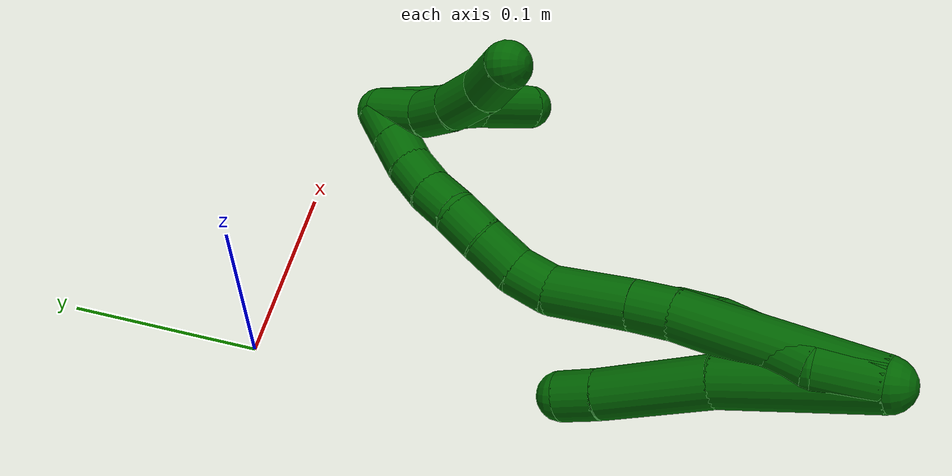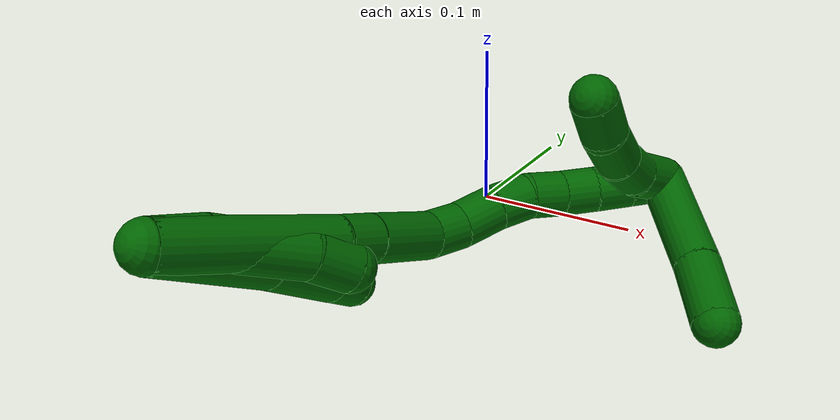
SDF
<sdf version="1.7">
 <world name="default">
  <model name="6">
   <static>0</static>
   <link name="6">
    <collision name="collision-cylinder-e_1_2_8">
     <pose>-0.001637 -0.002036 -0.03609 3.08524 -0.045249 -1.35298</pose>
     <geometry><cylinder><radius>0.0125</radius><length>0.072369</length></cylinder></geometry>
     <surface>
      <friction><ode><mu>1.16</mu><mu2>1.16</mu2><slip1>0</slip1><slip2>0</slip2></ode></friction>
      <contact><ode><kp>1e+06</kp><kd>1</kd><max_vel>0</max_vel><min_depth>0.001</min_depth></ode></contact>
     </surface>
    </collision>
    <visual name="visual-cylinder-e_1_2_8">
     <pose>-0.001637 -0.002036 -0.03609 3.08524 -0.045249 -1.35298</pose>
     <geometry><cylinder><radius>0.0125</radius><length>0.072369</length></cylinder></geometry>
     <material><ambient>0 0.392157 0.003922 1</ambient></material>
    </visual>
    <collision name="collision-cylinder-e_2_8_9">
     <pose>-0.006588 -0.008473 -0.100095 2.98524 -0.11675 -1.28189</pose>
     <geometry><cylinder><radius>0.0125</radius><length>0.056907</length></cylinder></geometry>
     <surface>
      <friction><ode><mu>1.16</mu><mu2>1.16</mu2><slip1>0</slip1><slip2>0</slip2></ode></friction>
      <contact><ode><kp>1e+06</kp><kd>1</kd><max_vel>0</max_vel><min_depth>0.001</min_depth></ode></contact>
     </surface>
    </collision>
    <visual name="visual-cylinder-e_2_8_9">
     <pose>-0.006588 -0.008473 -0.100095 2.98524 -0.11675 -1.28189</pose>
     <geometry><cylinder><radius>0.0125</radius><length>0.056907</length></cylinder></geometry>
     <material><ambient>0 0.392157 0.003922 1</ambient></material>
    </visual>
    <collision name="collision-cylinder-e_3_9_6">
     <pose>-0.010566 -0.014135 -0.138274 3.01928 -0.06413 -0.965101</pose>
     <geometry><cylinder><radius>0.0125</radius><length>0.020724</length></cylinder></geometry>
     <surface>
      <friction><ode><mu>1.16</mu><mu2>1.16</mu2><slip1>0</slip1><slip2>0</slip2></ode></friction>
      <contact><ode><kp>1e+06</kp><kd>1</kd><max_vel>0</max_vel><min_depth>0.001</min_depth></ode></contact>
     </surface>
    </collision>
    <visual name="visual-cylinder-e_3_9_6">
     <pose>-0.010566 -0.014135 -0.138274 3.01928 -0.06413 -0.965101</pose>
     <geometry><cylinder><radius>0.0125</radius><length>0.020724</length></cylinder></geometry>
     <material><ambient>0 0.392157 0.003922 1</ambient></material>
    </visual>
    <collision name="collision-cylinder-e_1_2_10">
     <pose>-0.000301 0.002629 -0.013727 -2.95235 -0.021499 0.225577</pose>
     <geometry><cylinder><radius>0.0125</radius><length>0.027959</length></cylinder></geometry>
     <surface>
      <friction><ode><mu>1.16</mu><mu2>1.16</mu2><slip1>0</slip1><slip2>0</slip2></ode></friction>
      <contact><ode><kp>1e+06</kp><kd>1</kd><max_vel>0</max_vel><min_depth>0.001</min_depth></ode></contact>
     </surface>
    </collision>
    <visual name="visual-cylinder-e_1_2_10">
     <pose>-0.000301 0.002629 -0.013727 -2.95235 -0.021499 0.225577</pose>
     <geometry><cylinder><radius>0.0125</radius><length>0.027959</length></cylinder></geometry>
     <material><ambient>0 0.392157 0.003922 1</ambient></material>
    </visual>
    <collision name="collision-cylinder-e_2_10_11">
     <pose>0.007188 0.009824 -0.050279 -2.94419 0.322911 -2.04907</pose>
     <geometry><cylinder><radius>0.0125</radius><length>0.049093</length></cylinder></geometry>
     <surface>
      <friction><ode><mu>1.16</mu><mu2>1.16</mu2><slip1>0</slip1><slip2>0</slip2></ode></friction>
      <contact><ode><kp>1e+06</kp><kd>1</kd><max_vel>0</max_vel><min_depth>0.001</min_depth></ode></contact>
     </surface>
    </collision>
    <visual name="visual-cylinder-e_2_10_11">
     <pose>0.007188 0.009824 -0.050279 -2.94419 0.322911 -2.04907</pose>
     <geometry><cylinder><radius>0.0125</radius><length>0.049093</length></cylinder></geometry>
     <material><ambient>0 0.392157 0.003922 1</ambient></material>
    </visual>
    <collision name="collision-cylinder-e_3_11_5">
     <pose>0.018522 0.014329 -0.084018 3.13609 0.314047 3.10681</pose>
     <geometry><cylinder><radius>0.0125</radius><length>0.022948</length></cylinder></geometry>
     <surface>
      <friction><ode><mu>1.16</mu><mu2>1.16</mu2><slip1>0</slip1><slip2>0</slip2></ode></friction>
      <contact><ode><kp>1e+06</kp><kd>1</kd><max_vel>0</max_vel><min_depth>0.001</min_depth></ode></contact>
     </surface>
    </collision>
    <visual name="visual-cylinder-e_3_11_5">
     <pose>0.018522 0.014329 -0.084018 3.13609 0.314047 3.10681</pose>
     <geometry><cylinder><radius>0.0125</radius><length>0.022948</length></cylinder></geometry>
     <material><ambient>0 0.392157 0.003922 1</ambient></material>
    </visual>
    <collision name="collision-cylinder-e_1_2_12">
     <pose>0.005517 0.010421 -0.045255 -2.91527 0.118249 -0.96038</pose>
     <geometry><cylinder><radius>0.0125</radius><length>0.093532</length></cylinder></geometry>
     <surface>
      <friction><ode><mu>1.16</mu><mu2>1.16</mu2><slip1>0</slip1><slip2>0</slip2></ode></friction>
      <contact><ode><kp>1e+06</kp><kd>1</kd><max_vel>0</max_vel><min_depth>0.001</min_depth></ode></contact>
     </surface>
    </collision>
    <visual name="visual-cylinder-e_1_2_12">
     <pose>0.005517 0.010421 -0.045255 -2.91527 0.118249 -0.96038</pose>
     <geometry><cylinder><radius>0.0125</radius><length>0.093532</length></cylinder></geometry>
     <material><ambient>0 0.392157 0.003922 1</ambient></material>
    </visual>
    <collision name="collision-cylinder-e_2_12_13">
     <pose>0.011131 0.022785 -0.100752 -2.95411 0.009233 -0.098127</pose>
     <geometry><cylinder><radius>0.0125</radius><length>0.020849</length></cylinder></geometry>
     <surface>
      <friction><ode><mu>1.16</mu><mu2>1.16</mu2><slip1>0</slip1><slip2>0</slip2></ode></friction>
      <contact><ode><kp>1e+06</kp><kd>1</kd><max_vel>0</max_vel><min_depth>0.001</min_depth></ode></contact>
     </surface>
    </collision>
    <visual name="visual-cylinder-e_2_12_13">
     <pose>0.011131 0.022785 -0.100752 -2.95411 0.009233 -0.098127</pose>
     <geometry><cylinder><radius>0.0125</radius><length>0.020849</length></cylinder></geometry>
     <material><ambient>0 0.392157 0.003922 1</ambient></material>
    </visual>
    <collision name="collision-cylinder-e_3_13_14">
     <pose>0.011005 0.028 -0.13185 -2.98595 -0.010496 0.134403</pose>
     <geometry><cylinder><radius>0.0125</radius><length>0.042225</length></cylinder></geometry>
     <surface>
      <friction><ode><mu>1.16</mu><mu2>1.16</mu2><slip1>0</slip1><slip2>0</slip2></ode></friction>
      <contact><ode><kp>1e+06</kp><kd>1</kd><max_vel>0</max_vel><min_depth>0.001</min_depth></ode></contact>
     </surface>
    </collision>
    <visual name="visual-cylinder-e_3_13_14">
     <pose>0.011005 0.028 -0.13185 -2.98595 -0.010496 0.134403</pose>
     <geometry><cylinder><radius>0.0125</radius><length>0.042225</length></cylinder></geometry>
     <material><ambient>0 0.392157 0.003922 1</ambient></material>
    </visual>
    <collision name="collision-cylinder-e_4_14_15">
     <pose>0.011577 0.036077 -0.16165 -2.6487 0.07804 -0.307922</pose>
     <geometry><cylinder><radius>0.0125</radius><length>0.020367</length></cylinder></geometry>
     <surface>
      <friction><ode><mu>1.16</mu><mu2>1.16</mu2><slip1>0</slip1><slip2>0</slip2></ode></friction>
      <contact><ode><kp>1e+06</kp><kd>1</kd><max_vel>0</max_vel><min_depth>0.001</min_depth></ode></contact>
     </surface>
    </collision>
    <visual name="visual-cylinder-e_4_14_15">
     <pose>0.011577 0.036077 -0.16165 -2.6487 0.07804 -0.307922</pose>
     <geometry><cylinder><radius>0.0125</radius><length>0.020367</length></cylinder></geometry>
     <material><ambient>0 0.392157 0.003922 1</ambient></material>
    </visual>
    <collision name="collision-cylinder-e_5_15_16">
     <pose>0.01382 0.04873 -0.17872 -2.37349 0.127534 -0.313422</pose>
     <geometry><cylinder><radius>0.0125</radius><length>0.02278</length></cylinder></geometry>
     <surface>
      <friction><ode><mu>1.16</mu><mu2>1.16</mu2><slip1>0</slip1><slip2>0</slip2></ode></friction>
      <contact><ode><kp>1e+06</kp><kd>1</kd><max_vel>0</max_vel><min_depth>0.001</min_depth></ode></contact>
     </surface>
    </collision>
    <visual name="visual-cylinder-e_5_15_16">
     <pose>0.01382 0.04873 -0.17872 -2.37349 0.127534 -0.313422</pose>
     <geometry><cylinder><radius>0.0125</radius><length>0.02278</length></cylinder></geometry>
     <material><ambient>0 0.392157 0.003922 1</ambient></material>
    </visual>
    <collision name="collision-cylinder-e_6_16_17">
     <pose>0.017495 0.063032 -0.19431 -2.42872 0.221921 -0.581511</pose>
     <geometry><cylinder><radius>0.0125</radius><length>0.020231</length></cylinder></geometry>
     <surface>
      <friction><ode><mu>1.16</mu><mu2>1.16</mu2><slip1>0</slip1><slip2>0</slip2></ode></friction>
      <contact><ode><kp>1e+06</kp><kd>1</kd><max_vel>0</max_vel><min_depth>0.001</min_depth></ode></contact>
     </surface>
    </collision>
    <visual name="visual-cylinder-e_6_16_17">
     <pose>0.017495 0.063032 -0.19431 -2.42872 0.221921 -0.581511</pose>
     <geometry><cylinder><radius>0.0125</radius><length>0.020231</length></cylinder></geometry>
     <material><ambient>0 0.392157 0.003922 1</ambient></material>
    </visual>
    <collision name="collision-cylinder-e_7_17_18">
     <pose>0.023206 0.073853 -0.210072 -2.65709 0.355737 -1.25789</pose>
     <geometry><cylinder><radius>0.0125</radius><length>0.020006</length></cylinder></geometry>
     <surface>
      <friction><ode><mu>1.16</mu><mu2>1.16</mu2><slip1>0</slip1><slip2>0</slip2></ode></friction>
      <contact><ode><kp>1e+06</kp><kd>1</kd><max_vel>0</max_vel><min_depth>0.001</min_depth></ode></contact>
     </surface>
    </collision>
    <visual name="visual-cylinder-e_7_17_18">
     <pose>0.023206 0.073853 -0.210072 -2.65709 0.355737 -1.25789</pose>
     <geometry><cylinder><radius>0.0125</radius><length>0.020006</length></cylinder></geometry>
     <material><ambient>0 0.392157 0.003922 1</ambient></material>
    </visual>
    <collision name="collision-cylinder-e_8_18_19">
     <pose>0.030851 0.083599 -0.225707 -2.50904 0.429011 -1.17467</pose>
     <geometry><cylinder><radius>0.0125</radius><length>0.020008</length></cylinder></geometry>
     <surface>
      <friction><ode><mu>1.16</mu><mu2>1.16</mu2><slip1>0</slip1><slip2>0</slip2></ode></friction>
      <contact><ode><kp>1e+06</kp><kd>1</kd><max_vel>0</max_vel><min_depth>0.001</min_depth></ode></contact>
     </surface>
    </collision>
    <visual name="visual-cylinder-e_8_18_19">
     <pose>0.030851 0.083599 -0.225707 -2.50904 0.429011 -1.17467</pose>
     <geometry><cylinder><radius>0.0125</radius><length>0.020008</length></cylinder></geometry>
     <material><ambient>0 0.392157 0.003922 1</ambient></material>
    </visual>
    <collision name="collision-cylinder-e_9_19_20">
     <pose>0.040035 0.094974 -0.239274 -2.37526 0.526208 -1.17815</pose>
     <geometry><cylinder><radius>0.0125</radius><length>0.020001</length></cylinder></geometry>
     <surface>
      <friction><ode><mu>1.16</mu><mu2>1.16</mu2><slip1>0</slip1><slip2>0</slip2></ode></friction>
      <contact><ode><kp>1e+06</kp><kd>1</kd><max_vel>0</max_vel><min_depth>0.001</min_depth></ode></contact>
     </surface>
    </collision>
    <visual name="visual-cylinder-e_9_19_20">
     <pose>0.040035 0.094974 -0.239274 -2.37526 0.526208 -1.17815</pose>
     <geometry><cylinder><radius>0.0125</radius><length>0.020001</length></cylinder></geometry>
     <material><ambient>0 0.392157 0.003922 1</ambient></material>
    </visual>
    <collision name="collision-cylinder-e_10_20_1">
     <pose>0.050095 0.106993 -0.251699 -2.3704 0.527874 -1.17474</pose>
     <geometry><cylinder><radius>0.0125</radius><length>0.02</length></cylinder></geometry>
     <surface>
      <friction><ode><mu>1.16</mu><mu2>1.16</mu2><slip1>0</slip1><slip2>0</slip2></ode></friction>
      <contact><ode><kp>1e+06</kp><kd>1</kd><max_vel>0</max_vel><min_depth>0.001</min_depth></ode></contact>
     </surface>
    </collision>
    <visual name="visual-cylinder-e_10_20_1">
     <pose>0.050095 0.106993 -0.251699 -2.3704 0.527874 -1.17474</pose>
     <geometry><cylinder><radius>0.0125</radius><length>0.02</length></cylinder></geometry>
     <material><ambient>0 0.392157 0.003922 1</ambient></material>
    </visual>
    <collision name="collision-cylinder-e_1_1_21">
     <pose>0.082035 0.101797 -0.245313 0.728145 1.0111 0.415765</pose>
     <geometry><cylinder><radius>0.0125</radius><length>0.063495</length></cylinder></geometry>
     <surface>
      <friction><ode><mu>1.16</mu><mu2>1.16</mu2><slip1>0</slip1><slip2>0</slip2></ode></friction>
      <contact><ode><kp>1e+06</kp><kd>1</kd><max_vel>0</max_vel><min_depth>0.001</min_depth></ode></contact>
     </surface>
    </collision>
    <visual name="visual-cylinder-e_1_1_21">
     <pose>0.082035 0.101797 -0.245313 0.728145 1.0111 0.415765</pose>
     <geometry><cylinder><radius>0.0125</radius><length>0.063495</length></cylinder></geometry>
     <material><ambient>0 0.392157 0.003922 1</ambient></material>
    </visual>
    <collision name="collision-cylinder-e_2_21_4">
     <pose>0.123824 0.083109 -0.225264 0.78561 0.953643 0.421713</pose>
     <geometry><cylinder><radius>0.0125</radius><length>0.036505</length></cylinder></geometry>
     <surface>
      <friction><ode><mu>1.16</mu><mu2>1.16</mu2><slip1>0</slip1><slip2>0</slip2></ode></friction>
      <contact><ode><kp>1e+06</kp><kd>1</kd><max_vel>0</max_vel><min_depth>0.001</min_depth></ode></contact>
     </surface>
    </collision>
    <visual name="visual-cylinder-e_2_21_4">
     <pose>0.123824 0.083109 -0.225264 0.78561 0.953643 0.421713</pose>
     <geometry><cylinder><radius>0.0125</radius><length>0.036505</length></cylinder></geometry>
     <material><ambient>0 0.392157 0.003922 1</ambient></material>
    </visual>
    <collision name="collision-cylinder-e_1_1_22">
     <pose>0.054094 0.111701 -0.243182 0.089002 -0.070124 -0.003124</pose>
     <geometry><cylinder><radius>0.0125</radius><length>0.029614</length></cylinder></geometry>
     <surface>
      <friction><ode><mu>1.16</mu><mu2>1.16</mu2><slip1>0</slip1><slip2>0</slip2></ode></friction>
      <contact><ode><kp>1e+06</kp><kd>1</kd><max_vel>0</max_vel><min_depth>0.001</min_depth></ode></contact>
     </surface>
    </collision>
    <visual name="visual-cylinder-e_1_1_22">
     <pose>0.054094 0.111701 -0.243182 0.089002 -0.070124 -0.003124</pose>
     <geometry><cylinder><radius>0.0125</radius><length>0.029614</length></cylinder></geometry>
     <material><ambient>0 0.392157 0.003922 1</ambient></material>
    </visual>
    <collision name="collision-cylinder-e_2_22_23">
     <pose>0.05178 0.112214 -0.217942 -0.171759 -0.118946 0.010252</pose>
     <geometry><cylinder><radius>0.0125</radius><length>0.02152</length></cylinder></geometry>
     <surface>
      <friction><ode><mu>1.16</mu><mu2>1.16</mu2><slip1>0</slip1><slip2>0</slip2></ode></friction>
      <contact><ode><kp>1e+06</kp><kd>1</kd><max_vel>0</max_vel><min_depth>0.001</min_depth></ode></contact>
     </surface>
    </collision>
    <visual name="visual-cylinder-e_2_22_23">
     <pose>0.05178 0.112214 -0.217942 -0.171759 -0.118946 0.010252</pose>
     <geometry><cylinder><radius>0.0125</radius><length>0.02152</length></cylinder></geometry>
     <material><ambient>0 0.392157 0.003922 1</ambient></material>
    </visual>
    <collision name="collision-cylinder-e_3_23_24">
     <pose>0.049369 0.118618 -0.19565 -0.371055 -0.089575 0.016823</pose>
     <geometry><cylinder><radius>0.0125</radius><length>0.025352</length></cylinder></geometry>
     <surface>
      <friction><ode><mu>1.16</mu><mu2>1.16</mu2><slip1>0</slip1><slip2>0</slip2></ode></friction>
      <contact><ode><kp>1e+06</kp><kd>1</kd><max_vel>0</max_vel><min_depth>0.001</min_depth></ode></contact>
     </surface>
    </collision>
    <visual name="visual-cylinder-e_3_23_24">
     <pose>0.049369 0.118618 -0.19565 -0.371055 -0.089575 0.016823</pose>
     <geometry><cylinder><radius>0.0125</radius><length>0.025352</length></cylinder></geometry>
     <material><ambient>0 0.392157 0.003922 1</ambient></material>
    </visual>
    <collision name="collision-cylinder-e_4_24_3">
     <pose>0.04578 0.129543 -0.174297 -0.584816 -0.210387 0.063548</pose>
     <geometry><cylinder><radius>0.0125</radius><length>0.023513</length></cylinder></geometry>
     <surface>
      <friction><ode><mu>1.16</mu><mu2>1.16</mu2><slip1>0</slip1><slip2>0</slip2></ode></friction>
      <contact><ode><kp>1e+06</kp><kd>1</kd><max_vel>0</max_vel><min_depth>0.001</min_depth></ode></contact>
     </surface>
    </collision>
    <visual name="visual-cylinder-e_4_24_3">
     <pose>0.04578 0.129543 -0.174297 -0.584816 -0.210387 0.063548</pose>
     <geometry><cylinder><radius>0.0125</radius><length>0.023513</length></cylinder></geometry>
     <material><ambient>0 0.392157 0.003922 1</ambient></material>
    </visual>
    <collision name="collision-sphere-3">
     <pose>0.043325 0.13589 -0.16471 0 -0 0</pose>
     <geometry><sphere><radius>0.0125</radius></sphere></geometry>
     <surface>
      <friction><ode><mu>1.16</mu><mu2>1.16</mu2><slip1>0</slip1><slip2>0</slip2></ode></friction>
      <contact><ode><kp>1e+06</kp><kd>1</kd><max_vel>0</max_vel><min_depth>0.001</min_depth></ode></contact>
     </surface>
    </collision>
    <visual name="visual-sphere-3">
     <pose>0.043325 0.13589 -0.16471 0 -0 0</pose>
     <geometry><sphere><radius>0.0125</radius></sphere></geometry>
     <material><ambient>0 0.392157 0.003922 1</ambient></material>
    </visual>
    <collision name="collision-sphere-24">
     <pose>0.048235 0.123196 -0.183884 0 -0 0</pose>
     <geometry><sphere><radius>0.0125</radius></sphere></geometry>
     <surface>
      <friction><ode><mu>1.16</mu><mu2>1.16</mu2><slip1>0</slip1><slip2>0</slip2></ode></friction>
      <contact><ode><kp>1e+06</kp><kd>1</kd><max_vel>0</max_vel><min_depth>0.001</min_depth></ode></contact>
     </surface>
    </collision>
    <visual name="visual-sphere-24">
     <pose>0.048235 0.123196 -0.183884 0 -0 0</pose>
     <geometry><sphere><radius>0.0125</radius></sphere></geometry>
     <material><ambient>0 0.392157 0.003922 1</ambient></material>
    </visual>
    <collision name="collision-sphere-23">
     <pose>0.050503 0.11404 -0.207416 0 -0 0</pose>
     <geometry><sphere><radius>0.0125</radius></sphere></geometry>
     <surface>
      <friction><ode><mu>1.16</mu><mu2>1.16</mu2><slip1>0</slip1><slip2>0</slip2></ode></friction>
      <contact><ode><kp>1e+06</kp><kd>1</kd><max_vel>0</max_vel><min_depth>0.001</min_depth></ode></contact>
     </surface>
    </collision>
    <visual name="visual-sphere-23">
     <pose>0.050503 0.11404 -0.207416 0 -0 0</pose>
     <geometry><sphere><radius>0.0125</radius></sphere></geometry>
     <material><ambient>0 0.392157 0.003922 1</ambient></material>
    </visual>
    <collision name="collision-sphere-22">
     <pose>0.053057 0.110388 -0.228469 0 -0 0</pose>
     <geometry><sphere><radius>0.0125</radius></sphere></geometry>
     <surface>
      <friction><ode><mu>1.16</mu><mu2>1.16</mu2><slip1>0</slip1><slip2>0</slip2></ode></friction>
      <contact><ode><kp>1e+06</kp><kd>1</kd><max_vel>0</max_vel><min_depth>0.001</min_depth></ode></contact>
     </surface>
    </collision>
    <visual name="visual-sphere-22">
     <pose>0.053057 0.110388 -0.228469 0 -0 0</pose>
     <geometry><sphere><radius>0.0125</radius></sphere></geometry>
     <material><ambient>0 0.392157 0.003922 1</ambient></material>
    </visual>
    <collision name="collision-sphere-4">
     <pose>0.13871 0.075638 -0.217796 0 -0 0</pose>
     <geometry><sphere><radius>0.0125</radius></sphere></geometry>
     <surface>
      <friction><ode><mu>1.16</mu><mu2>1.16</mu2><slip1>0</slip1><slip2>0</slip2></ode></friction>
      <contact><ode><kp>1e+06</kp><kd>1</kd><max_vel>0</max_vel><min_depth>0.001</min_depth></ode></contact>
     </surface>
    </collision>
    <visual name="visual-sphere-4">
     <pose>0.13871 0.075638 -0.217796 0 -0 0</pose>
     <geometry><sphere><radius>0.0125</radius></sphere></geometry>
     <material><ambient>0 0.392157 0.003922 1</ambient></material>
    </visual>
    <collision name="collision-sphere-21">
     <pose>0.108939 0.09058 -0.232732 0 -0 0</pose>
     <geometry><sphere><radius>0.0125</radius></sphere></geometry>
     <surface>
      <friction><ode><mu>1.16</mu><mu2>1.16</mu2><slip1>0</slip1><slip2>0</slip2></ode></friction>
      <contact><ode><kp>1e+06</kp><kd>1</kd><max_vel>0</max_vel><min_depth>0.001</min_depth></ode></contact>
     </surface>
    </collision>
    <visual name="visual-sphere-21">
     <pose>0.108939 0.09058 -0.232732 0 -0 0</pose>
     <geometry><sphere><radius>0.0125</radius></sphere></geometry>
     <material><ambient>0 0.392157 0.003922 1</ambient></material>
    </visual>
    <collision name="collision-sphere-1">
     <pose>0.055132 0.113014 -0.257894 0 -0 0</pose>
     <geometry><sphere><radius>0.0125</radius></sphere></geometry>
     <surface>
      <friction><ode><mu>1.16</mu><mu2>1.16</mu2><slip1>0</slip1><slip2>0</slip2></ode></friction>
      <contact><ode><kp>1e+06</kp><kd>1</kd><max_vel>0</max_vel><min_depth>0.001</min_depth></ode></contact>
     </surface>
    </collision>
    <visual name="visual-sphere-1">
     <pose>0.055132 0.113014 -0.257894 0 -0 0</pose>
     <geometry><sphere><radius>0.0125</radius></sphere></geometry>
     <material><ambient>0 0.392157 0.003922 1</ambient></material>
    </visual>
    <collision name="collision-sphere-11">
     <pose>0.014977 0.014389 -0.073105 0 -0 0</pose>
     <geometry><sphere><radius>0.0125</radius></sphere></geometry>
     <surface>
      <friction><ode><mu>1.16</mu><mu2>1.16</mu2><slip1>0</slip1><slip2>0</slip2></ode></friction>
      <contact><ode><kp>1e+06</kp><kd>1</kd><max_vel>0</max_vel><min_depth>0.001</min_depth></ode></contact>
     </surface>
    </collision>
    <visual name="visual-sphere-11">
     <pose>0.014977 0.014389 -0.073105 0 -0 0</pose>
     <geometry><sphere><radius>0.0125</radius></sphere></geometry>
     <material><ambient>0 0.392157 0.003922 1</ambient></material>
    </visual>
    <collision name="collision-sphere-10">
     <pose>-0.000601 0.005258 -0.027454 0 -0 0</pose>
     <geometry><sphere><radius>0.0125</radius></sphere></geometry>
     <surface>
      <friction><ode><mu>1.16</mu><mu2>1.16</mu2><slip1>0</slip1><slip2>0</slip2></ode></friction>
      <contact><ode><kp>1e+06</kp><kd>1</kd><max_vel>0</max_vel><min_depth>0.001</min_depth></ode></contact>
     </surface>
    </collision>
    <visual name="visual-sphere-10">
     <pose>-0.000601 0.005258 -0.027454 0 -0 0</pose>
     <geometry><sphere><radius>0.0125</radius></sphere></geometry>
     <material><ambient>0 0.392157 0.003922 1</ambient></material>
    </visual>
    <collision name="collision-sphere-6">
     <pose>-0.01123 -0.015396 -0.148537 0 -0 0</pose>
     <geometry><sphere><radius>0.0125</radius></sphere></geometry>
     <surface>
      <friction><ode><mu>1.16</mu><mu2>1.16</mu2><slip1>0</slip1><slip2>0</slip2></ode></friction>
      <contact><ode><kp>1e+06</kp><kd>1</kd><max_vel>0</max_vel><min_depth>0.001</min_depth></ode></contact>
     </surface>
    </collision>
    <visual name="visual-sphere-6">
     <pose>-0.01123 -0.015396 -0.148537 0 -0 0</pose>
     <geometry><sphere><radius>0.0125</radius></sphere></geometry>
     <material><ambient>0 0.392157 0.003922 1</ambient></material>
    </visual>
    <collision name="collision-sphere-9">
     <pose>-0.009902 -0.012873 -0.12801 0 -0 0</pose>
     <geometry><sphere><radius>0.0125</radius></sphere></geometry>
     <surface>
      <friction><ode><mu>1.16</mu><mu2>1.16</mu2><slip1>0</slip1><slip2>0</slip2></ode></friction>
      <contact><ode><kp>1e+06</kp><kd>1</kd><max_vel>0</max_vel><min_depth>0.001</min_depth></ode></contact>
     </surface>
    </collision>
    <visual name="visual-sphere-9">
     <pose>-0.009902 -0.012873 -0.12801 0 -0 0</pose>
     <geometry><sphere><radius>0.0125</radius></sphere></geometry>
     <material><ambient>0 0.392157 0.003922 1</ambient></material>
    </visual>
    <collision name="collision-sphere-2">
     <geometry><sphere><radius>0.0125</radius></sphere></geometry>
     <surface>
      <friction><ode><mu>1.16</mu><mu2>1.16</mu2><slip1>0</slip1><slip2>0</slip2></ode></friction>
      <contact><ode><kp>1e+06</kp><kd>1</kd><max_vel>0</max_vel><min_depth>0.001</min_depth></ode></contact>
     </surface>
    </collision>
    <visual name="visual-sphere-2">
     <geometry><sphere><radius>0.0125</radius></sphere></geometry>
     <material><ambient>0 0.392157 0.003922 1</ambient></material>
    </visual>
    <collision name="collision-sphere-19">
     <pose>0.035012 0.088977 -0.233044 0 -0 0</pose>
     <geometry><sphere><radius>0.0125</radius></sphere></geometry>
     <surface>
      <friction><ode><mu>1.16</mu><mu2>1.16</mu2><slip1>0</slip1><slip2>0</slip2></ode></friction>
      <contact><ode><kp>1e+06</kp><kd>1</kd><max_vel>0</max_vel><min_depth>0.001</min_depth></ode></contact>
     </surface>
    </collision>
    <visual name="visual-sphere-19">
     <pose>0.035012 0.088977 -0.233044 0 -0 0</pose>
     <geometry><sphere><radius>0.0125</radius></sphere></geometry>
     <material><ambient>0 0.392157 0.003922 1</ambient></material>
    </visual>
    <collision name="collision-sphere-8">
     <pose>-0.003274 -0.004072 -0.07218 0 -0 0</pose>
     <geometry><sphere><radius>0.0125</radius></sphere></geometry>
     <surface>
      <friction><ode><mu>1.16</mu><mu2>1.16</mu2><slip1>0</slip1><slip2>0</slip2></ode></friction>
      <contact><ode><kp>1e+06</kp><kd>1</kd><max_vel>0</max_vel><min_depth>0.001</min_depth></ode></contact>
     </surface>
    </collision>
    <visual name="visual-sphere-8">
     <pose>-0.003274 -0.004072 -0.07218 0 -0 0</pose>
     <geometry><sphere><radius>0.0125</radius></sphere></geometry>
     <material><ambient>0 0.392157 0.003922 1</ambient></material>
    </visual>
    <collision name="collision-sphere-5">
     <pose>0.022066 0.014269 -0.09493 0 -0 0</pose>
     <geometry><sphere><radius>0.0125</radius></sphere></geometry>
     <surface>
      <friction><ode><mu>1.16</mu><mu2>1.16</mu2><slip1>0</slip1><slip2>0</slip2></ode></friction>
      <contact><ode><kp>1e+06</kp><kd>1</kd><max_vel>0</max_vel><min_depth>0.001</min_depth></ode></contact>
     </surface>
    </collision>
    <visual name="visual-sphere-5">
     <pose>0.022066 0.014269 -0.09493 0 -0 0</pose>
     <geometry><sphere><radius>0.0125</radius></sphere></geometry>
     <material><ambient>0 0.392157 0.003922 1</ambient></material>
    </visual>
    <collision name="collision-sphere-12">
     <pose>0.011034 0.020842 -0.09051 0 -0 0</pose>
     <geometry><sphere><radius>0.0125</radius></sphere></geometry>
     <surface>
      <friction><ode><mu>1.16</mu><mu2>1.16</mu2><slip1>0</slip1><slip2>0</slip2></ode></friction>
      <contact><ode><kp>1e+06</kp><kd>1</kd><max_vel>0</max_vel><min_depth>0.001</min_depth></ode></contact>
     </surface>
    </collision>
    <visual name="visual-sphere-12">
     <pose>0.011034 0.020842 -0.09051 0 -0 0</pose>
     <geometry><sphere><radius>0.0125</radius></sphere></geometry>
     <material><ambient>0 0.392157 0.003922 1</ambient></material>
    </visual>
    <collision name="collision-sphere-13">
     <pose>0.011227 0.024727 -0.110993 0 -0 0</pose>
     <geometry><sphere><radius>0.0125</radius></sphere></geometry>
     <surface>
      <friction><ode><mu>1.16</mu><mu2>1.16</mu2><slip1>0</slip1><slip2>0</slip2></ode></friction>
      <contact><ode><kp>1e+06</kp><kd>1</kd><max_vel>0</max_vel><min_depth>0.001</min_depth></ode></contact>
     </surface>
    </collision>
    <visual name="visual-sphere-13">
     <pose>0.011227 0.024727 -0.110993 0 -0 0</pose>
     <geometry><sphere><radius>0.0125</radius></sphere></geometry>
     <material><ambient>0 0.392157 0.003922 1</ambient></material>
    </visual>
    <collision name="collision-sphere-14">
     <pose>0.010784 0.031273 -0.152706 0 -0 0</pose>
     <geometry><sphere><radius>0.0125</radius></sphere></geometry>
     <surface>
      <friction><ode><mu>1.16</mu><mu2>1.16</mu2><slip1>0</slip1><slip2>0</slip2></ode></friction>
      <contact><ode><kp>1e+06</kp><kd>1</kd><max_vel>0</max_vel><min_depth>0.001</min_depth></ode></contact>
     </surface>
    </collision>
    <visual name="visual-sphere-14">
     <pose>0.010784 0.031273 -0.152706 0 -0 0</pose>
     <geometry><sphere><radius>0.0125</radius></sphere></geometry>
     <material><ambient>0 0.392157 0.003922 1</ambient></material>
    </visual>
    <collision name="collision-sphere-15">
     <pose>0.012371 0.040881 -0.170594 0 -0 0</pose>
     <geometry><sphere><radius>0.0125</radius></sphere></geometry>
     <surface>
      <friction><ode><mu>1.16</mu><mu2>1.16</mu2><slip1>0</slip1><slip2>0</slip2></ode></friction>
      <contact><ode><kp>1e+06</kp><kd>1</kd><max_vel>0</max_vel><min_depth>0.001</min_depth></ode></contact>
     </surface>
    </collision>
    <visual name="visual-sphere-15">
     <pose>0.012371 0.040881 -0.170594 0 -0 0</pose>
     <geometry><sphere><radius>0.0125</radius></sphere></geometry>
     <material><ambient>0 0.392157 0.003922 1</ambient></material>
    </visual>
    <collision name="collision-sphere-16">
     <pose>0.015269 0.056579 -0.186845 0 -0 0</pose>
     <geometry><sphere><radius>0.0125</radius></sphere></geometry>
     <surface>
      <friction><ode><mu>1.16</mu><mu2>1.16</mu2><slip1>0</slip1><slip2>0</slip2></ode></friction>
      <contact><ode><kp>1e+06</kp><kd>1</kd><max_vel>0</max_vel><min_depth>0.001</min_depth></ode></contact>
     </surface>
    </collision>
    <visual name="visual-sphere-16">
     <pose>0.015269 0.056579 -0.186845 0 -0 0</pose>
     <geometry><sphere><radius>0.0125</radius></sphere></geometry>
     <material><ambient>0 0.392157 0.003922 1</ambient></material>
    </visual>
    <collision name="collision-sphere-17">
     <pose>0.019722 0.069486 -0.201774 0 -0 0</pose>
     <geometry><sphere><radius>0.0125</radius></sphere></geometry>
     <surface>
      <friction><ode><mu>1.16</mu><mu2>1.16</mu2><slip1>0</slip1><slip2>0</slip2></ode></friction>
      <contact><ode><kp>1e+06</kp><kd>1</kd><max_vel>0</max_vel><min_depth>0.001</min_depth></ode></contact>
     </surface>
    </collision>
    <visual name="visual-sphere-17">
     <pose>0.019722 0.069486 -0.201774 0 -0 0</pose>
     <geometry><sphere><radius>0.0125</radius></sphere></geometry>
     <material><ambient>0 0.392157 0.003922 1</ambient></material>
    </visual>
    <collision name="collision-sphere-18">
     <pose>0.026689 0.078221 -0.218369 0 -0 0</pose>
     <geometry><sphere><radius>0.0125</radius></sphere></geometry>
     <surface>
      <friction><ode><mu>1.16</mu><mu2>1.16</mu2><slip1>0</slip1><slip2>0</slip2></ode></friction>
      <contact><ode><kp>1e+06</kp><kd>1</kd><max_vel>0</max_vel><min_depth>0.001</min_depth></ode></contact>
     </surface>
    </collision>
    <visual name="visual-sphere-18">
     <pose>0.026689 0.078221 -0.218369 0 -0 0</pose>
     <geometry><sphere><radius>0.0125</radius></sphere></geometry>
     <material><ambient>0 0.392157 0.003922 1</ambient></material>
    </visual>
    <collision name="collision-sphere-20">
     <pose>0.045058 0.100971 -0.245504 0 -0 0</pose>
     <geometry><sphere><radius>0.0125</radius></sphere></geometry>
     <surface>
      <friction><ode><mu>1.16</mu><mu2>1.16</mu2><slip1>0</slip1><slip2>0</slip2></ode></friction>
      <contact><ode><kp>1e+06</kp><kd>1</kd><max_vel>0</max_vel><min_depth>0.001</min_depth></ode></contact>
     </surface>
    </collision>
    <visual name="visual-sphere-20">
     <pose>0.045058 0.100971 -0.245504 0 -0 0</pose>
     <geometry><sphere><radius>0.0125</radius></sphere></geometry>
     <material><ambient>0 0.392157 0.003922 1</ambient></material>
    </visual>
    <inertial>
     <pose>0.026443 0.04557 -0.136583 0 -0 0</pose>
     <mass>0.75</mass>
     <inertia>
      <ixx>-1.8e-05</ixx>
      <ixy>0</ixy>
      <ixz>0</ixz>
      <iyy>-0.000135</iyy>
      <iyz>0</iyz>
      <izz>-7.7e-05</izz>
     </inertia>
    </inertial>
   </link>
   <pose>0.000623 -0.285107 0.093342 1.06536 0.281418 -0.310376</pose>
  </model>
 </world>
</sdf>
